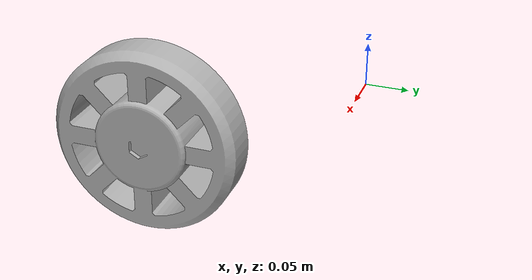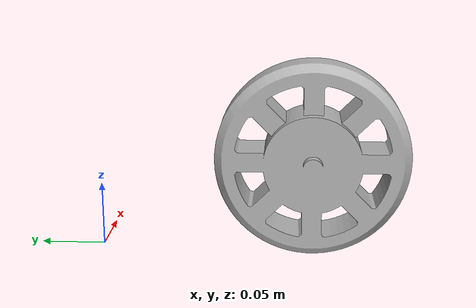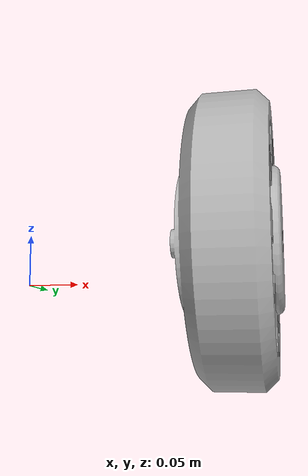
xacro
<?xml version="1.0" ?>
<robot name="my" xmlns:xacro="http://www.ros.org/wiki/xacro">

<xacro:include filename="$(find my_description)/urdf/materials.xacro" />
<xacro:include filename="$(find my_description)/urdf/my.trans" />
<xacro:include filename="$(find my_description)/urdf/my.gazebo" />
<link name="base_link">
  <inertial>
    <origin rpy="0 0 0" xyz="2.1363301386939105e-17 -0.0024965409300267195 0.04577001177847953"/>
    <mass value="106.94277300466135"/>
    <inertia ixx="1.844046" ixy="0.0" ixz="0.0" iyy="1.101918" iyz="1.3e-05" izz="2.804544"/>
  </inertial>
  <visual>
    <origin rpy="0 0 0" xyz="0 0 0"/>
    <geometry>
      <mesh filename="package://my_description/meshes/base_link.stl" scale="0.001 0.001 0.001"/>
    </geometry>
    <material name="silver"/>
  </visual>
  <collision>
    <origin rpy="0 0 0" xyz="0 0 0"/>
    <geometry>
      <mesh filename="package://my_description/meshes/base_link.stl" scale="0.001 0.001 0.001"/>
    </geometry>
  </collision>
</link>

<link name="right_front_wheel_1">
  <inertial>
    <origin rpy="0 0 0" xyz="0.0438314649294316 -2.4702462297909733e-15 1.734723475976807e-17"/>
    <mass value="10.057534967035263"/>
    <inertia ixx="0.046774" ixy="-0.0" ixz="-0.0" iyy="0.025998" iyz="0.0" izz="0.025998"/>
  </inertial>
  <visual>
    <origin rpy="0 0 0" xyz="-0.175 0.17 -0.01"/>
    <geometry>
      <mesh filename="package://my_description/meshes/right_front_wheel_1.stl" scale="0.001 0.001 0.001"/>
    </geometry>
    <material name="silver"/>
  </visual>
  <collision>
    <origin rpy="0 0 0" xyz="-0.175 0.17 -0.01"/>
    <geometry>
      <mesh filename="package://my_description/meshes/right_front_wheel_1.stl" scale="0.001 0.001 0.001"/>
    </geometry>
  </collision>
</link>

<link name="right_rear_wheel_1">
  <inertial>
    <origin rpy="0 0 0" xyz="0.04383146492943166 -2.55351295663786e-15 6.418476861114186e-17"/>
    <mass value="10.05753496703526"/>
    <inertia ixx="0.046774" ixy="-0.0" ixz="0.0" iyy="0.025998" iyz="0.0" izz="0.025998"/>
  </inertial>
  <visual>
    <origin rpy="0 0 0" xyz="-0.175 -0.18 -0.01"/>
    <geometry>
      <mesh filename="package://my_description/meshes/right_rear_wheel_1.stl" scale="0.001 0.001 0.001"/>
    </geometry>
    <material name="silver"/>
  </visual>
  <collision>
    <origin rpy="0 0 0" xyz="-0.175 -0.18 -0.01"/>
    <geometry>
      <mesh filename="package://my_description/meshes/right_rear_wheel_1.stl" scale="0.001 0.001 0.001"/>
    </geometry>
  </collision>
</link>

<link name="left_front_wheel_1">
  <inertial>
    <origin rpy="0 0 0" xyz="-0.04383146492943163 -1.6681100944992977e-14 6.938893903907228e-17"/>
    <mass value="10.057534967035268"/>
    <inertia ixx="0.046774" ixy="0.0" ixz="-0.0" iyy="0.025998" iyz="-0.0" izz="0.025998"/>
  </inertial>
  <visual>
    <origin rpy="0 0 0" xyz="0.175 0.17 -0.01"/>
    <geometry>
      <mesh filename="package://my_description/meshes/left_front_wheel_1.stl" scale="0.001 0.001 0.001"/>
    </geometry>
    <material name="silver"/>
  </visual>
  <collision>
    <origin rpy="0 0 0" xyz="0.175 0.17 -0.01"/>
    <geometry>
      <mesh filename="package://my_description/meshes/left_front_wheel_1.stl" scale="0.001 0.001 0.001"/>
    </geometry>
  </collision>
</link>

<link name="left_rear_wheel_1">
  <inertial>
    <origin rpy="0 0 0" xyz="-0.04383146492943174 -1.6653345369377348e-14 -1.9081958235744878e-17"/>
    <mass value="10.057534967035286"/>
    <inertia ixx="0.046774" ixy="0.0" ixz="-0.0" iyy="0.025998" iyz="-0.0" izz="0.025998"/>
  </inertial>
  <visual>
    <origin rpy="0 0 0" xyz="0.175 -0.18 -0.01"/>
    <geometry>
      <mesh filename="package://my_description/meshes/left_rear_wheel_1.stl" scale="0.001 0.001 0.001"/>
    </geometry>
    <material name="silver"/>
  </visual>
  <collision>
    <origin rpy="0 0 0" xyz="0.175 -0.18 -0.01"/>
    <geometry>
      <mesh filename="package://my_description/meshes/left_rear_wheel_1.stl" scale="0.001 0.001 0.001"/>
    </geometry>
  </collision>
</link>

<joint name="Rev5" type="continuous">
  <origin rpy="0 0 0" xyz="0.175 -0.17 0.01"/>
  <parent link="base_link"/>
  <child link="right_front_wheel_1"/>
  <axis xyz="1.0 0.0 0.0"/>
</joint>

<joint name="Rev6" type="continuous">
  <origin rpy="0 0 0" xyz="0.175 0.18 0.01"/>
  <parent link="base_link"/>
  <child link="right_rear_wheel_1"/>
  <axis xyz="1.0 0.0 0.0"/>
</joint>

<joint name="Rev7" type="continuous">
  <origin rpy="0 0 0" xyz="-0.175 -0.17 0.01"/>
  <parent link="base_link"/>
  <child link="left_front_wheel_1"/>
  <axis xyz="-1.0 0.0 0.0"/>
</joint>

<joint name="Rev8" type="continuous">
  <origin rpy="0 0 0" xyz="-0.175 0.18 0.01"/>
  <parent link="base_link"/>
  <child link="left_rear_wheel_1"/>
  <axis xyz="-1.0 0.0 0.0"/>
</joint>

</robot>

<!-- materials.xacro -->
<robot name="my" xmlns:xacro="http://www.ros.org/wiki/xacro" >

<material name="silver">
  <color rgba="0.700 0.700 0.700 1.000"/>
</material>

</robot>

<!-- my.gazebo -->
<robot name="my" xmlns:xacro="http://www.ros.org/wiki/xacro" >

<xacro:property name="body_color" value="Gazebo/Silver" />

<gazebo>
  <plugin filename="libgazebo_ros_control.so" name="control"/>
</gazebo>
<gazebo reference="base_link">
  <material>${body_color}</material>
  <mu1>0.2</mu1>
  <mu2>0.2</mu2>
  <selfCollide>true</selfCollide>
  <gravity>true</gravity>
</gazebo>

<gazebo reference="right_front_wheel_1">
  <material>${body_color}</material>
  <mu1>0.2</mu1>
  <mu2>0.2</mu2>
  <selfCollide>true</selfCollide>
</gazebo>

<gazebo reference="right_rear_wheel_1">
  <material>${body_color}</material>
  <mu1>0.2</mu1>
  <mu2>0.2</mu2>
  <selfCollide>true</selfCollide>
</gazebo>

<gazebo reference="left_front_wheel_1">
  <material>${body_color}</material>
  <mu1>0.2</mu1>
  <mu2>0.2</mu2>
  <selfCollide>true</selfCollide>
</gazebo>

<gazebo reference="left_rear_wheel_1">
  <material>${body_color}</material>
  <mu1>0.2</mu1>
  <mu2>0.2</mu2>
  <selfCollide>true</selfCollide>
</gazebo>

</robot>
